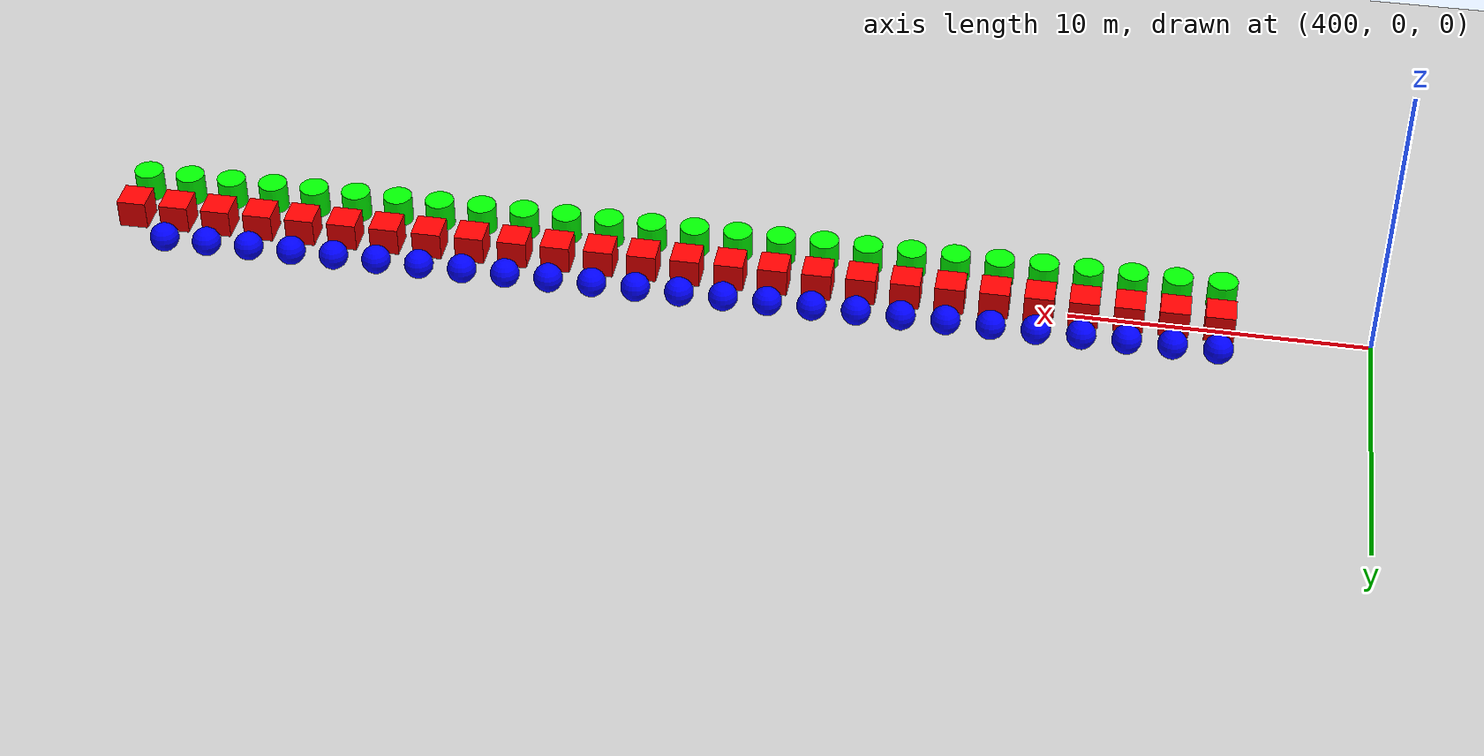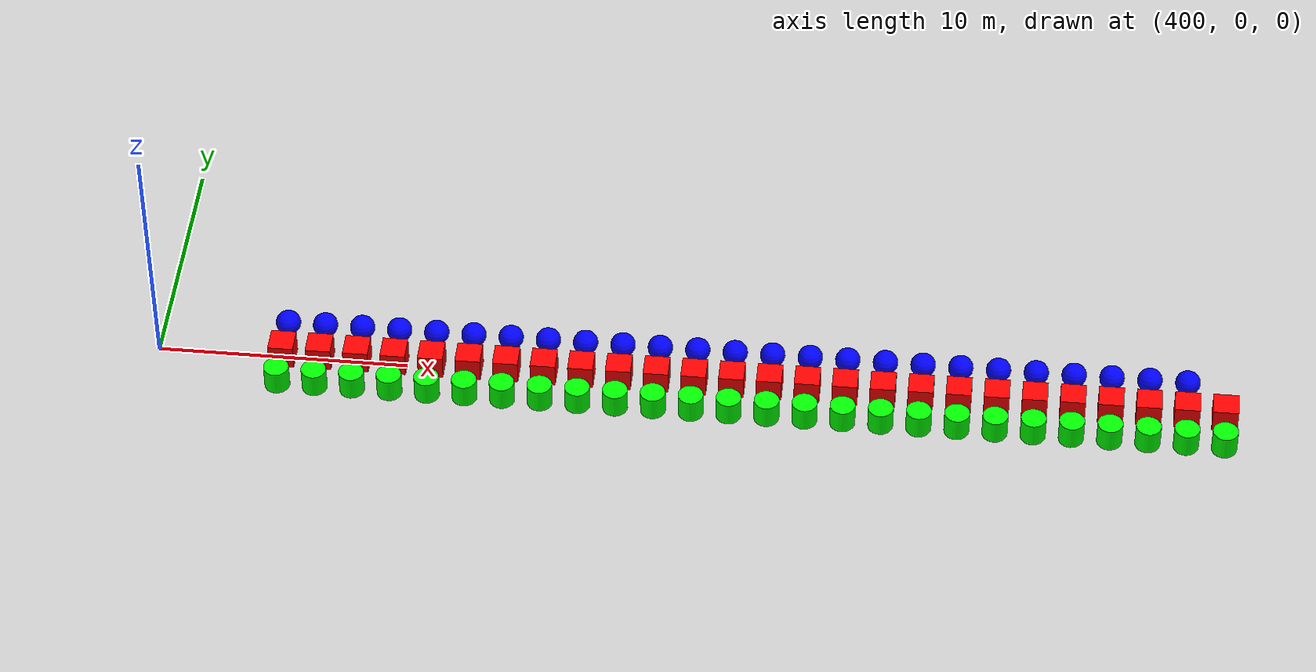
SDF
<sdf version="1.6">
 <world name="shapes">
  <model name="ground_plane">
   <static>true</static>
   <link name="link">
    <collision name="collision">
     <geometry><plane><normal>0 0 1</normal><size>100 100</size></plane></geometry>
    </collision>
    <visual name="visual">
     <geometry><plane><normal>0 0 1</normal><size>100 100</size></plane></geometry>
     <material>
      <ambient>0.8 0.8 0.8 1</ambient>
      <diffuse>0.8 0.8 0.8 1</diffuse>
      <specular>0.8 0.8 0.8 1</specular>
     </material>
    </visual>
   </link>
  </model>
  <model name="box_770">
   <static>false</static>
   <pose>405.0 0 0.5 0 0 0</pose>
   <link name="box_link">
    <inertial>
     <inertia><ixx>1</ixx><ixy>0</ixy><ixz>0</ixz><iyy>1</iyy><iyz>0</iyz><izz>1</izz></inertia>
     <mass>1.0</mass>
    </inertial>
    <collision name="box_collision"><geometry><box><size>1 1 1</size></box></geometry></collision>
    <visual name="box_visual">
     <geometry><box><size>1 1 1</size></box></geometry>
     <material><ambient>1 0 0 1</ambient><diffuse>1 0 0 1</diffuse><specular>1 0 0 1</specular></material>
    </visual>
   </link>
  </model>
  <model name="cylinder_770">
   <static>false</static>
   <pose>405.0 -1.5 0.5 0 0 0</pose>
   <link name="cylinder_link">
    <inertial>
     <inertia><ixx>2</ixx><ixy>0</ixy><ixz>0</ixz><iyy>2</iyy><iyz>0</iyz><izz>2</izz></inertia>
     <mass>2.0</mass>
    </inertial>
    <collision name="cylinder_collision">
     <geometry><cylinder><radius>0.5</radius><length>1.0</length></cylinder></geometry>
    </collision>
    <visual name="cylinder_visual">
     <geometry><cylinder><radius>0.5</radius><length>1.0</length></cylinder></geometry>
     <material><ambient>0 1 0 1</ambient><diffuse>0 1 0 1</diffuse><specular>0 1 0 1</specular></material>
    </visual>
   </link>
  </model>
  <model name="sphere_770">
   <static>false</static>
   <pose>405.0 1.5 0.5 0 0 0</pose>
   <link name="sphere_link">
    <inertial>
     <inertia><ixx>3</ixx><ixy>0</ixy><ixz>0</ixz><iyy>3</iyy><iyz>0</iyz><izz>3</izz></inertia>
     <mass>3.0</mass>
    </inertial>
    <collision name="sphere_collision"><geometry><sphere><radius>0.5</radius></sphere></geometry></collision>
    <visual name="sphere_visual">
     <geometry><sphere><radius>0.5</radius></sphere></geometry>
     <material><ambient>0 0 1 1</ambient><diffuse>0 0 1 1</diffuse><specular>0 0 1 1</specular></material>
    </visual>
   </link>
  </model>
  <model name="box_771">
   <static>false</static>
   <pose>406.5 0 0.5 0 0 0</pose>
   <link name="box_link">
    <inertial>
     <inertia><ixx>1</ixx><ixy>0</ixy><ixz>0</ixz><iyy>1</iyy><iyz>0</iyz><izz>1</izz></inertia>
     <mass>1.0</mass>
    </inertial>
    <collision name="box_collision"><geometry><box><size>1 1 1</size></box></geometry></collision>
    <visual name="box_visual">
     <geometry><box><size>1 1 1</size></box></geometry>
     <material><ambient>1 0 0 1</ambient><diffuse>1 0 0 1</diffuse><specular>1 0 0 1</specular></material>
    </visual>
   </link>
  </model>
  <model name="cylinder_771">
   <static>false</static>
   <pose>406.5 -1.5 0.5 0 0 0</pose>
   <link name="cylinder_link">
    <inertial>
     <inertia><ixx>2</ixx><ixy>0</ixy><ixz>0</ixz><iyy>2</iyy><iyz>0</iyz><izz>2</izz></inertia>
     <mass>2.0</mass>
    </inertial>
    <collision name="cylinder_collision">
     <geometry><cylinder><radius>0.5</radius><length>1.0</length></cylinder></geometry>
    </collision>
    <visual name="cylinder_visual">
     <geometry><cylinder><radius>0.5</radius><length>1.0</length></cylinder></geometry>
     <material><ambient>0 1 0 1</ambient><diffuse>0 1 0 1</diffuse><specular>0 1 0 1</specular></material>
    </visual>
   </link>
  </model>
  <model name="sphere_771">
   <static>false</static>
   <pose>406.5 1.5 0.5 0 0 0</pose>
   <link name="sphere_link">
    <inertial>
     <inertia><ixx>3</ixx><ixy>0</ixy><ixz>0</ixz><iyy>3</iyy><iyz>0</iyz><izz>3</izz></inertia>
     <mass>3.0</mass>
    </inertial>
    <collision name="sphere_collision"><geometry><sphere><radius>0.5</radius></sphere></geometry></collision>
    <visual name="sphere_visual">
     <geometry><sphere><radius>0.5</radius></sphere></geometry>
     <material><ambient>0 0 1 1</ambient><diffuse>0 0 1 1</diffuse><specular>0 0 1 1</specular></material>
    </visual>
   </link>
  </model>
  <model name="box_772">
   <static>false</static>
   <pose>408.0 0 0.5 0 0 0</pose>
   <link name="box_link">
    <inertial>
     <inertia><ixx>1</ixx><ixy>0</ixy><ixz>0</ixz><iyy>1</iyy><iyz>0</iyz><izz>1</izz></inertia>
     <mass>1.0</mass>
    </inertial>
    <collision name="box_collision"><geometry><box><size>1 1 1</size></box></geometry></collision>
    <visual name="box_visual">
     <geometry><box><size>1 1 1</size></box></geometry>
     <material><ambient>1 0 0 1</ambient><diffuse>1 0 0 1</diffuse><specular>1 0 0 1</specular></material>
    </visual>
   </link>
  </model>
  <model name="cylinder_772">
   <static>false</static>
   <pose>408.0 -1.5 0.5 0 0 0</pose>
   <link name="cylinder_link">
    <inertial>
     <inertia><ixx>2</ixx><ixy>0</ixy><ixz>0</ixz><iyy>2</iyy><iyz>0</iyz><izz>2</izz></inertia>
     <mass>2.0</mass>
    </inertial>
    <collision name="cylinder_collision">
     <geometry><cylinder><radius>0.5</radius><length>1.0</length></cylinder></geometry>
    </collision>
    <visual name="cylinder_visual">
     <geometry><cylinder><radius>0.5</radius><length>1.0</length></cylinder></geometry>
     <material><ambient>0 1 0 1</ambient><diffuse>0 1 0 1</diffuse><specular>0 1 0 1</specular></material>
    </visual>
   </link>
  </model>
  <model name="sphere_772">
   <static>false</static>
   <pose>408.0 1.5 0.5 0 0 0</pose>
   <link name="sphere_link">
    <inertial>
     <inertia><ixx>3</ixx><ixy>0</ixy><ixz>0</ixz><iyy>3</iyy><iyz>0</iyz><izz>3</izz></inertia>
     <mass>3.0</mass>
    </inertial>
    <collision name="sphere_collision"><geometry><sphere><radius>0.5</radius></sphere></geometry></collision>
    <visual name="sphere_visual">
     <geometry><sphere><radius>0.5</radius></sphere></geometry>
     <material><ambient>0 0 1 1</ambient><diffuse>0 0 1 1</diffuse><specular>0 0 1 1</specular></material>
    </visual>
   </link>
  </model>
  <model name="box_773">
   <static>false</static>
   <pose>409.5 0 0.5 0 0 0</pose>
   <link name="box_link">
    <inertial>
     <inertia><ixx>1</ixx><ixy>0</ixy><ixz>0</ixz><iyy>1</iyy><iyz>0</iyz><izz>1</izz></inertia>
     <mass>1.0</mass>
    </inertial>
    <collision name="box_collision"><geometry><box><size>1 1 1</size></box></geometry></collision>
    <visual name="box_visual">
     <geometry><box><size>1 1 1</size></box></geometry>
     <material><ambient>1 0 0 1</ambient><diffuse>1 0 0 1</diffuse><specular>1 0 0 1</specular></material>
    </visual>
   </link>
  </model>
  <model name="cylinder_773">
   <static>false</static>
   <pose>409.5 -1.5 0.5 0 0 0</pose>
   <link name="cylinder_link">
    <inertial>
     <inertia><ixx>2</ixx><ixy>0</ixy><ixz>0</ixz><iyy>2</iyy><iyz>0</iyz><izz>2</izz></inertia>
     <mass>2.0</mass>
    </inertial>
    <collision name="cylinder_collision">
     <geometry><cylinder><radius>0.5</radius><length>1.0</length></cylinder></geometry>
    </collision>
    <visual name="cylinder_visual">
     <geometry><cylinder><radius>0.5</radius><length>1.0</length></cylinder></geometry>
     <material><ambient>0 1 0 1</ambient><diffuse>0 1 0 1</diffuse><specular>0 1 0 1</specular></material>
    </visual>
   </link>
  </model>
  <model name="sphere_773">
   <static>false</static>
   <pose>409.5 1.5 0.5 0 0 0</pose>
   <link name="sphere_link">
    <inertial>
     <inertia><ixx>3</ixx><ixy>0</ixy><ixz>0</ixz><iyy>3</iyy><iyz>0</iyz><izz>3</izz></inertia>
     <mass>3.0</mass>
    </inertial>
    <collision name="sphere_collision"><geometry><sphere><radius>0.5</radius></sphere></geometry></collision>
    <visual name="sphere_visual">
     <geometry><sphere><radius>0.5</radius></sphere></geometry>
     <material><ambient>0 0 1 1</ambient><diffuse>0 0 1 1</diffuse><specular>0 0 1 1</specular></material>
    </visual>
   </link>
  </model>
  <model name="box_774">
   <static>false</static>
   <pose>411.0 0 0.5 0 0 0</pose>
   <link name="box_link">
    <inertial>
     <inertia><ixx>1</ixx><ixy>0</ixy><ixz>0</ixz><iyy>1</iyy><iyz>0</iyz><izz>1</izz></inertia>
     <mass>1.0</mass>
    </inertial>
    <collision name="box_collision"><geometry><box><size>1 1 1</size></box></geometry></collision>
    <visual name="box_visual">
     <geometry><box><size>1 1 1</size></box></geometry>
     <material><ambient>1 0 0 1</ambient><diffuse>1 0 0 1</diffuse><specular>1 0 0 1</specular></material>
    </visual>
   </link>
  </model>
  <model name="cylinder_774">
   <static>false</static>
   <pose>411.0 -1.5 0.5 0 0 0</pose>
   <link name="cylinder_link">
    <inertial>
     <inertia><ixx>2</ixx><ixy>0</ixy><ixz>0</ixz><iyy>2</iyy><iyz>0</iyz><izz>2</izz></inertia>
     <mass>2.0</mass>
    </inertial>
    <collision name="cylinder_collision">
     <geometry><cylinder><radius>0.5</radius><length>1.0</length></cylinder></geometry>
    </collision>
    <visual name="cylinder_visual">
     <geometry><cylinder><radius>0.5</radius><length>1.0</length></cylinder></geometry>
     <material><ambient>0 1 0 1</ambient><diffuse>0 1 0 1</diffuse><specular>0 1 0 1</specular></material>
    </visual>
   </link>
  </model>
  <model name="sphere_774">
   <static>false</static>
   <pose>411.0 1.5 0.5 0 0 0</pose>
   <link name="sphere_link">
    <inertial>
     <inertia><ixx>3</ixx><ixy>0</ixy><ixz>0</ixz><iyy>3</iyy><iyz>0</iyz><izz>3</izz></inertia>
     <mass>3.0</mass>
    </inertial>
    <collision name="sphere_collision"><geometry><sphere><radius>0.5</radius></sphere></geometry></collision>
    <visual name="sphere_visual">
     <geometry><sphere><radius>0.5</radius></sphere></geometry>
     <material><ambient>0 0 1 1</ambient><diffuse>0 0 1 1</diffuse><specular>0 0 1 1</specular></material>
    </visual>
   </link>
  </model>
  <model name="box_775">
   <static>false</static>
   <pose>412.5 0 0.5 0 0 0</pose>
   <link name="box_link">
    <inertial>
     <inertia><ixx>1</ixx><ixy>0</ixy><ixz>0</ixz><iyy>1</iyy><iyz>0</iyz><izz>1</izz></inertia>
     <mass>1.0</mass>
    </inertial>
    <collision name="box_collision"><geometry><box><size>1 1 1</size></box></geometry></collision>
    <visual name="box_visual">
     <geometry><box><size>1 1 1</size></box></geometry>
     <material><ambient>1 0 0 1</ambient><diffuse>1 0 0 1</diffuse><specular>1 0 0 1</specular></material>
    </visual>
   </link>
  </model>
  <model name="cylinder_775">
   <static>false</static>
   <pose>412.5 -1.5 0.5 0 0 0</pose>
   <link name="cylinder_link">
    <inertial>
     <inertia><ixx>2</ixx><ixy>0</ixy><ixz>0</ixz><iyy>2</iyy><iyz>0</iyz><izz>2</izz></inertia>
     <mass>2.0</mass>
    </inertial>
    <collision name="cylinder_collision">
     <geometry><cylinder><radius>0.5</radius><length>1.0</length></cylinder></geometry>
    </collision>
    <visual name="cylinder_visual">
     <geometry><cylinder><radius>0.5</radius><length>1.0</length></cylinder></geometry>
     <material><ambient>0 1 0 1</ambient><diffuse>0 1 0 1</diffuse><specular>0 1 0 1</specular></material>
    </visual>
   </link>
  </model>
  <model name="sphere_775">
   <static>false</static>
   <pose>412.5 1.5 0.5 0 0 0</pose>
   <link name="sphere_link">
    <inertial>
     <inertia><ixx>3</ixx><ixy>0</ixy><ixz>0</ixz><iyy>3</iyy><iyz>0</iyz><izz>3</izz></inertia>
     <mass>3.0</mass>
    </inertial>
    <collision name="sphere_collision"><geometry><sphere><radius>0.5</radius></sphere></geometry></collision>
    <visual name="sphere_visual">
     <geometry><sphere><radius>0.5</radius></sphere></geometry>
     <material><ambient>0 0 1 1</ambient><diffuse>0 0 1 1</diffuse><specular>0 0 1 1</specular></material>
    </visual>
   </link>
  </model>
  <model name="box_776">
   <static>false</static>
   <pose>414.0 0 0.5 0 0 0</pose>
   <link name="box_link">
    <inertial>
     <inertia><ixx>1</ixx><ixy>0</ixy><ixz>0</ixz><iyy>1</iyy><iyz>0</iyz><izz>1</izz></inertia>
     <mass>1.0</mass>
    </inertial>
    <collision name="box_collision"><geometry><box><size>1 1 1</size></box></geometry></collision>
    <visual name="box_visual">
     <geometry><box><size>1 1 1</size></box></geometry>
     <material><ambient>1 0 0 1</ambient><diffuse>1 0 0 1</diffuse><specular>1 0 0 1</specular></material>
    </visual>
   </link>
  </model>
  <model name="cylinder_776">
   <static>false</static>
   <pose>414.0 -1.5 0.5 0 0 0</pose>
   <link name="cylinder_link">
    <inertial>
     <inertia><ixx>2</ixx><ixy>0</ixy><ixz>0</ixz><iyy>2</iyy><iyz>0</iyz><izz>2</izz></inertia>
     <mass>2.0</mass>
    </inertial>
    <collision name="cylinder_collision">
     <geometry><cylinder><radius>0.5</radius><length>1.0</length></cylinder></geometry>
    </collision>
    <visual name="cylinder_visual">
     <geometry><cylinder><radius>0.5</radius><length>1.0</length></cylinder></geometry>
     <material><ambient>0 1 0 1</ambient><diffuse>0 1 0 1</diffuse><specular>0 1 0 1</specular></material>
    </visual>
   </link>
  </model>
  <model name="sphere_776">
   <static>false</static>
   <pose>414.0 1.5 0.5 0 0 0</pose>
   <link name="sphere_link">
    <inertial>
     <inertia><ixx>3</ixx><ixy>0</ixy><ixz>0</ixz><iyy>3</iyy><iyz>0</iyz><izz>3</izz></inertia>
     <mass>3.0</mass>
    </inertial>
    <collision name="sphere_collision"><geometry><sphere><radius>0.5</radius></sphere></geometry></collision>
    <visual name="sphere_visual">
     <geometry><sphere><radius>0.5</radius></sphere></geometry>
     <material><ambient>0 0 1 1</ambient><diffuse>0 0 1 1</diffuse><specular>0 0 1 1</specular></material>
    </visual>
   </link>
  </model>
  <model name="box_777">
   <static>false</static>
   <pose>415.5 0 0.5 0 0 0</pose>
   <link name="box_link">
    <inertial>
     <inertia><ixx>1</ixx><ixy>0</ixy><ixz>0</ixz><iyy>1</iyy><iyz>0</iyz><izz>1</izz></inertia>
     <mass>1.0</mass>
    </inertial>
    <collision name="box_collision"><geometry><box><size>1 1 1</size></box></geometry></collision>
    <visual name="box_visual">
     <geometry><box><size>1 1 1</size></box></geometry>
     <material><ambient>1 0 0 1</ambient><diffuse>1 0 0 1</diffuse><specular>1 0 0 1</specular></material>
    </visual>
   </link>
  </model>
  <model name="cylinder_777">
   <static>false</static>
   <pose>415.5 -1.5 0.5 0 0 0</pose>
   <link name="cylinder_link">
    <inertial>
     <inertia><ixx>2</ixx><ixy>0</ixy><ixz>0</ixz><iyy>2</iyy><iyz>0</iyz><izz>2</izz></inertia>
     <mass>2.0</mass>
    </inertial>
    <collision name="cylinder_collision">
     <geometry><cylinder><radius>0.5</radius><length>1.0</length></cylinder></geometry>
    </collision>
    <visual name="cylinder_visual">
     <geometry><cylinder><radius>0.5</radius><length>1.0</length></cylinder></geometry>
     <material><ambient>0 1 0 1</ambient><diffuse>0 1 0 1</diffuse><specular>0 1 0 1</specular></material>
    </visual>
   </link>
  </model>
  <model name="sphere_777">
   <static>false</static>
   <pose>415.5 1.5 0.5 0 0 0</pose>
   <link name="sphere_link">
    <inertial>
     <inertia><ixx>3</ixx><ixy>0</ixy><ixz>0</ixz><iyy>3</iyy><iyz>0</iyz><izz>3</izz></inertia>
     <mass>3.0</mass>
    </inertial>
    <collision name="sphere_collision"><geometry><sphere><radius>0.5</radius></sphere></geometry></collision>
    <visual name="sphere_visual">
     <geometry><sphere><radius>0.5</radius></sphere></geometry>
     <material><ambient>0 0 1 1</ambient><diffuse>0 0 1 1</diffuse><specular>0 0 1 1</specular></material>
    </visual>
   </link>
  </model>
  <model name="box_778">
   <static>false</static>
   <pose>417.0 0 0.5 0 0 0</pose>
   <link name="box_link">
    <inertial>
     <inertia><ixx>1</ixx><ixy>0</ixy><ixz>0</ixz><iyy>1</iyy><iyz>0</iyz><izz>1</izz></inertia>
     <mass>1.0</mass>
    </inertial>
    <collision name="box_collision"><geometry><box><size>1 1 1</size></box></geometry></collision>
    <visual name="box_visual">
     <geometry><box><size>1 1 1</size></box></geometry>
     <material><ambient>1 0 0 1</ambient><diffuse>1 0 0 1</diffuse><specular>1 0 0 1</specular></material>
    </visual>
   </link>
  </model>
  <model name="cylinder_778">
   <static>false</static>
   <pose>417.0 -1.5 0.5 0 0 0</pose>
   <link name="cylinder_link">
    <inertial>
     <inertia><ixx>2</ixx><ixy>0</ixy><ixz>0</ixz><iyy>2</iyy><iyz>0</iyz><izz>2</izz></inertia>
     <mass>2.0</mass>
    </inertial>
    <collision name="cylinder_collision">
     <geometry><cylinder><radius>0.5</radius><length>1.0</length></cylinder></geometry>
    </collision>
    <visual name="cylinder_visual">
     <geometry><cylinder><radius>0.5</radius><length>1.0</length></cylinder></geometry>
     <material><ambient>0 1 0 1</ambient><diffuse>0 1 0 1</diffuse><specular>0 1 0 1</specular></material>
    </visual>
   </link>
  </model>
  <model name="sphere_778">
   <static>false</static>
   <pose>417.0 1.5 0.5 0 0 0</pose>
   <link name="sphere_link">
    <inertial>
     <inertia><ixx>3</ixx><ixy>0</ixy><ixz>0</ixz><iyy>3</iyy><iyz>0</iyz><izz>3</izz></inertia>
     <mass>3.0</mass>
    </inertial>
    <collision name="sphere_collision"><geometry><sphere><radius>0.5</radius></sphere></geometry></collision>
    <visual name="sphere_visual">
     <geometry><sphere><radius>0.5</radius></sphere></geometry>
     <material><ambient>0 0 1 1</ambient><diffuse>0 0 1 1</diffuse><specular>0 0 1 1</specular></material>
    </visual>
   </link>
  </model>
  <model name="box_779">
   <static>false</static>
   <pose>418.5 0 0.5 0 0 0</pose>
   <link name="box_link">
    <inertial>
     <inertia><ixx>1</ixx><ixy>0</ixy><ixz>0</ixz><iyy>1</iyy><iyz>0</iyz><izz>1</izz></inertia>
     <mass>1.0</mass>
    </inertial>
    <collision name="box_collision"><geometry><box><size>1 1 1</size></box></geometry></collision>
    <visual name="box_visual">
     <geometry><box><size>1 1 1</size></box></geometry>
     <material><ambient>1 0 0 1</ambient><diffuse>1 0 0 1</diffuse><specular>1 0 0 1</specular></material>
    </visual>
   </link>
  </model>
  <model name="cylinder_779">
   <static>false</static>
   <pose>418.5 -1.5 0.5 0 0 0</pose>
   <link name="cylinder_link">
    <inertial>
     <inertia><ixx>2</ixx><ixy>0</ixy><ixz>0</ixz><iyy>2</iyy><iyz>0</iyz><izz>2</izz></inertia>
     <mass>2.0</mass>
    </inertial>
    <collision name="cylinder_collision">
     <geometry><cylinder><radius>0.5</radius><length>1.0</length></cylinder></geometry>
    </collision>
    <visual name="cylinder_visual">
     <geometry><cylinder><radius>0.5</radius><length>1.0</length></cylinder></geometry>
     <material><ambient>0 1 0 1</ambient><diffuse>0 1 0 1</diffuse><specular>0 1 0 1</specular></material>
    </visual>
   </link>
  </model>
  <model name="sphere_779">
   <static>false</static>
   <pose>418.5 1.5 0.5 0 0 0</pose>
   <link name="sphere_link">
    <inertial>
     <inertia><ixx>3</ixx><ixy>0</ixy><ixz>0</ixz><iyy>3</iyy><iyz>0</iyz><izz>3</izz></inertia>
     <mass>3.0</mass>
    </inertial>
    <collision name="sphere_collision"><geometry><sphere><radius>0.5</radius></sphere></geometry></collision>
    <visual name="sphere_visual">
     <geometry><sphere><radius>0.5</radius></sphere></geometry>
     <material><ambient>0 0 1 1</ambient><diffuse>0 0 1 1</diffuse><specular>0 0 1 1</specular></material>
    </visual>
   </link>
  </model>
  <model name="box_780">
   <static>false</static>
   <pose>420.0 0 0.5 0 0 0</pose>
   <link name="box_link">
    <inertial>
     <inertia><ixx>1</ixx><ixy>0</ixy><ixz>0</ixz><iyy>1</iyy><iyz>0</iyz><izz>1</izz></inertia>
     <mass>1.0</mass>
    </inertial>
    <collision name="box_collision"><geometry><box><size>1 1 1</size></box></geometry></collision>
    <visual name="box_visual">
     <geometry><box><size>1 1 1</size></box></geometry>
     <material><ambient>1 0 0 1</ambient><diffuse>1 0 0 1</diffuse><specular>1 0 0 1</specular></material>
    </visual>
   </link>
  </model>
  <model name="cylinder_780">
   <static>false</static>
   <pose>420.0 -1.5 0.5 0 0 0</pose>
   <link name="cylinder_link">
    <inertial>
     <inertia><ixx>2</ixx><ixy>0</ixy><ixz>0</ixz><iyy>2</iyy><iyz>0</iyz><izz>2</izz></inertia>
     <mass>2.0</mass>
    </inertial>
    <collision name="cylinder_collision">
     <geometry><cylinder><radius>0.5</radius><length>1.0</length></cylinder></geometry>
    </collision>
    <visual name="cylinder_visual">
     <geometry><cylinder><radius>0.5</radius><length>1.0</length></cylinder></geometry>
     <material><ambient>0 1 0 1</ambient><diffuse>0 1 0 1</diffuse><specular>0 1 0 1</specular></material>
    </visual>
   </link>
  </model>
  <model name="sphere_780">
   <static>false</static>
   <pose>420.0 1.5 0.5 0 0 0</pose>
   <link name="sphere_link">
    <inertial>
     <inertia><ixx>3</ixx><ixy>0</ixy><ixz>0</ixz><iyy>3</iyy><iyz>0</iyz><izz>3</izz></inertia>
     <mass>3.0</mass>
    </inertial>
    <collision name="sphere_collision"><geometry><sphere><radius>0.5</radius></sphere></geometry></collision>
    <visual name="sphere_visual">
     <geometry><sphere><radius>0.5</radius></sphere></geometry>
     <material><ambient>0 0 1 1</ambient><diffuse>0 0 1 1</diffuse><specular>0 0 1 1</specular></material>
    </visual>
   </link>
  </model>
  <model name="box_781">
   <static>false</static>
   <pose>421.5 0 0.5 0 0 0</pose>
   <link name="box_link">
    <inertial>
     <inertia><ixx>1</ixx><ixy>0</ixy><ixz>0</ixz><iyy>1</iyy><iyz>0</iyz><izz>1</izz></inertia>
     <mass>1.0</mass>
    </inertial>
    <collision name="box_collision"><geometry><box><size>1 1 1</size></box></geometry></collision>
    <visual name="box_visual">
     <geometry><box><size>1 1 1</size></box></geometry>
     <material><ambient>1 0 0 1</ambient><diffuse>1 0 0 1</diffuse><specular>1 0 0 1</specular></material>
    </visual>
   </link>
  </model>
  <model name="cylinder_781">
   <static>false</static>
   <pose>421.5 -1.5 0.5 0 0 0</pose>
   <link name="cylinder_link">
    <inertial>
     <inertia><ixx>2</ixx><ixy>0</ixy><ixz>0</ixz><iyy>2</iyy><iyz>0</iyz><izz>2</izz></inertia>
     <mass>2.0</mass>
    </inertial>
    <collision name="cylinder_collision">
     <geometry><cylinder><radius>0.5</radius><length>1.0</length></cylinder></geometry>
    </collision>
    <visual name="cylinder_visual">
     <geometry><cylinder><radius>0.5</radius><length>1.0</length></cylinder></geometry>
     <material><ambient>0 1 0 1</ambient><diffuse>0 1 0 1</diffuse><specular>0 1 0 1</specular></material>
    </visual>
   </link>
  </model>
  <model name="sphere_781">
   <static>false</static>
   <pose>421.5 1.5 0.5 0 0 0</pose>
   <link name="sphere_link">
    <inertial>
     <inertia><ixx>3</ixx><ixy>0</ixy><ixz>0</ixz><iyy>3</iyy><iyz>0</iyz><izz>3</izz></inertia>
     <mass>3.0</mass>
    </inertial>
    <collision name="sphere_collision"><geometry><sphere><radius>0.5</radius></sphere></geometry></collision>
    <visual name="sphere_visual">
     <geometry><sphere><radius>0.5</radius></sphere></geometry>
     <material><ambient>0 0 1 1</ambient><diffuse>0 0 1 1</diffuse><specular>0 0 1 1</specular></material>
    </visual>
   </link>
  </model>
  <model name="box_782">
   <static>false</static>
   <pose>423.0 0 0.5 0 0 0</pose>
   <link name="box_link">
    <inertial>
     <inertia><ixx>1</ixx><ixy>0</ixy><ixz>0</ixz><iyy>1</iyy><iyz>0</iyz><izz>1</izz></inertia>
     <mass>1.0</mass>
    </inertial>
    <collision name="box_collision"><geometry><box><size>1 1 1</size></box></geometry></collision>
    <visual name="box_visual">
     <geometry><box><size>1 1 1</size></box></geometry>
     <material><ambient>1 0 0 1</ambient><diffuse>1 0 0 1</diffuse><specular>1 0 0 1</specular></material>
    </visual>
   </link>
  </model>
  <model name="cylinder_782">
   <static>false</static>
   <pose>423.0 -1.5 0.5 0 0 0</pose>
   <link name="cylinder_link">
    <inertial>
     <inertia><ixx>2</ixx><ixy>0</ixy><ixz>0</ixz><iyy>2</iyy><iyz>0</iyz><izz>2</izz></inertia>
     <mass>2.0</mass>
    </inertial>
    <collision name="cylinder_collision">
     <geometry><cylinder><radius>0.5</radius><length>1.0</length></cylinder></geometry>
    </collision>
    <visual name="cylinder_visual">
     <geometry><cylinder><radius>0.5</radius><length>1.0</length></cylinder></geometry>
     <material><ambient>0 1 0 1</ambient><diffuse>0 1 0 1</diffuse><specular>0 1 0 1</specular></material>
    </visual>
   </link>
  </model>
  <model name="sphere_782">
   <static>false</static>
   <pose>423.0 1.5 0.5 0 0 0</pose>
   <link name="sphere_link">
    <inertial>
     <inertia><ixx>3</ixx><ixy>0</ixy><ixz>0</ixz><iyy>3</iyy><iyz>0</iyz><izz>3</izz></inertia>
     <mass>3.0</mass>
    </inertial>
    <collision name="sphere_collision"><geometry><sphere><radius>0.5</radius></sphere></geometry></collision>
    <visual name="sphere_visual">
     <geometry><sphere><radius>0.5</radius></sphere></geometry>
     <material><ambient>0 0 1 1</ambient><diffuse>0 0 1 1</diffuse><specular>0 0 1 1</specular></material>
    </visual>
   </link>
  </model>
  <model name="box_783">
   <static>false</static>
   <pose>424.5 0 0.5 0 0 0</pose>
   <link name="box_link">
    <inertial>
     <inertia><ixx>1</ixx><ixy>0</ixy><ixz>0</ixz><iyy>1</iyy><iyz>0</iyz><izz>1</izz></inertia>
     <mass>1.0</mass>
    </inertial>
    <collision name="box_collision"><geometry><box><size>1 1 1</size></box></geometry></collision>
    <visual name="box_visual">
     <geometry><box><size>1 1 1</size></box></geometry>
     <material><ambient>1 0 0 1</ambient><diffuse>1 0 0 1</diffuse><specular>1 0 0 1</specular></material>
    </visual>
   </link>
  </model>
  <model name="cylinder_783">
   <static>false</static>
   <pose>424.5 -1.5 0.5 0 0 0</pose>
   <link name="cylinder_link">
    <inertial>
     <inertia><ixx>2</ixx><ixy>0</ixy><ixz>0</ixz><iyy>2</iyy><iyz>0</iyz><izz>2</izz></inertia>
     <mass>2.0</mass>
    </inertial>
    <collision name="cylinder_collision">
     <geometry><cylinder><radius>0.5</radius><length>1.0</length></cylinder></geometry>
    </collision>
    <visual name="cylinder_visual">
     <geometry><cylinder><radius>0.5</radius><length>1.0</length></cylinder></geometry>
     <material><ambient>0 1 0 1</ambient><diffuse>0 1 0 1</diffuse><specular>0 1 0 1</specular></material>
    </visual>
   </link>
  </model>
  <model name="sphere_783">
   <static>false</static>
   <pose>424.5 1.5 0.5 0 0 0</pose>
   <link name="sphere_link">
    <inertial>
     <inertia><ixx>3</ixx><ixy>0</ixy><ixz>0</ixz><iyy>3</iyy><iyz>0</iyz><izz>3</izz></inertia>
     <mass>3.0</mass>
    </inertial>
    <collision name="sphere_collision"><geometry><sphere><radius>0.5</radius></sphere></geometry></collision>
    <visual name="sphere_visual">
     <geometry><sphere><radius>0.5</radius></sphere></geometry>
     <material><ambient>0 0 1 1</ambient><diffuse>0 0 1 1</diffuse><specular>0 0 1 1</specular></material>
    </visual>
   </link>
  </model>
  <model name="box_784">
   <static>false</static>
   <pose>426.0 0 0.5 0 0 0</pose>
   <link name="box_link">
    <inertial>
     <inertia><ixx>1</ixx><ixy>0</ixy><ixz>0</ixz><iyy>1</iyy><iyz>0</iyz><izz>1</izz></inertia>
     <mass>1.0</mass>
    </inertial>
    <collision name="box_collision"><geometry><box><size>1 1 1</size></box></geometry></collision>
    <visual name="box_visual">
     <geometry><box><size>1 1 1</size></box></geometry>
     <material><ambient>1 0 0 1</ambient><diffuse>1 0 0 1</diffuse><specular>1 0 0 1</specular></material>
    </visual>
   </link>
  </model>
  <model name="cylinder_784">
   <static>false</static>
   <pose>426.0 -1.5 0.5 0 0 0</pose>
   <link name="cylinder_link">
    <inertial>
     <inertia><ixx>2</ixx><ixy>0</ixy><ixz>0</ixz><iyy>2</iyy><iyz>0</iyz><izz>2</izz></inertia>
     <mass>2.0</mass>
    </inertial>
    <collision name="cylinder_collision">
     <geometry><cylinder><radius>0.5</radius><length>1.0</length></cylinder></geometry>
    </collision>
    <visual name="cylinder_visual">
     <geometry><cylinder><radius>0.5</radius><length>1.0</length></cylinder></geometry>
     <material><ambient>0 1 0 1</ambient><diffuse>0 1 0 1</diffuse><specular>0 1 0 1</specular></material>
    </visual>
   </link>
  </model>
  <model name="sphere_784">
   <static>false</static>
   <pose>426.0 1.5 0.5 0 0 0</pose>
   <link name="sphere_link">
    <inertial>
     <inertia><ixx>3</ixx><ixy>0</ixy><ixz>0</ixz><iyy>3</iyy><iyz>0</iyz><izz>3</izz></inertia>
     <mass>3.0</mass>
    </inertial>
    <collision name="sphere_collision"><geometry><sphere><radius>0.5</radius></sphere></geometry></collision>
    <visual name="sphere_visual">
     <geometry><sphere><radius>0.5</radius></sphere></geometry>
     <material><ambient>0 0 1 1</ambient><diffuse>0 0 1 1</diffuse><specular>0 0 1 1</specular></material>
    </visual>
   </link>
  </model>
  <model name="box_785">
   <static>false</static>
   <pose>427.5 0 0.5 0 0 0</pose>
   <link name="box_link">
    <inertial>
     <inertia><ixx>1</ixx><ixy>0</ixy><ixz>0</ixz><iyy>1</iyy><iyz>0</iyz><izz>1</izz></inertia>
     <mass>1.0</mass>
    </inertial>
    <collision name="box_collision"><geometry><box><size>1 1 1</size></box></geometry></collision>
    <visual name="box_visual">
     <geometry><box><size>1 1 1</size></box></geometry>
     <material><ambient>1 0 0 1</ambient><diffuse>1 0 0 1</diffuse><specular>1 0 0 1</specular></material>
    </visual>
   </link>
  </model>
  <model name="cylinder_785">
   <static>false</static>
   <pose>427.5 -1.5 0.5 0 0 0</pose>
   <link name="cylinder_link">
    <inertial>
     <inertia><ixx>2</ixx><ixy>0</ixy><ixz>0</ixz><iyy>2</iyy><iyz>0</iyz><izz>2</izz></inertia>
     <mass>2.0</mass>
    </inertial>
    <collision name="cylinder_collision">
     <geometry><cylinder><radius>0.5</radius><length>1.0</length></cylinder></geometry>
    </collision>
    <visual name="cylinder_visual">
     <geometry><cylinder><radius>0.5</radius><length>1.0</length></cylinder></geometry>
     <material><ambient>0 1 0 1</ambient><diffuse>0 1 0 1</diffuse><specular>0 1 0 1</specular></material>
    </visual>
   </link>
  </model>
  <model name="sphere_785">
   <static>false</static>
   <pose>427.5 1.5 0.5 0 0 0</pose>
   <link name="sphere_link">
    <inertial>
     <inertia><ixx>3</ixx><ixy>0</ixy><ixz>0</ixz><iyy>3</iyy><iyz>0</iyz><izz>3</izz></inertia>
     <mass>3.0</mass>
    </inertial>
    <collision name="sphere_collision"><geometry><sphere><radius>0.5</radius></sphere></geometry></collision>
    <visual name="sphere_visual">
     <geometry><sphere><radius>0.5</radius></sphere></geometry>
     <material><ambient>0 0 1 1</ambient><diffuse>0 0 1 1</diffuse><specular>0 0 1 1</specular></material>
    </visual>
   </link>
  </model>
  <model name="box_786">
   <static>false</static>
   <pose>429.0 0 0.5 0 0 0</pose>
   <link name="box_link">
    <inertial>
     <inertia><ixx>1</ixx><ixy>0</ixy><ixz>0</ixz><iyy>1</iyy><iyz>0</iyz><izz>1</izz></inertia>
     <mass>1.0</mass>
    </inertial>
    <collision name="box_collision"><geometry><box><size>1 1 1</size></box></geometry></collision>
    <visual name="box_visual">
     <geometry><box><size>1 1 1</size></box></geometry>
     <material><ambient>1 0 0 1</ambient><diffuse>1 0 0 1</diffuse><specular>1 0 0 1</specular></material>
    </visual>
   </link>
  </model>
  <model name="cylinder_786">
   <static>false</static>
   <pose>429.0 -1.5 0.5 0 0 0</pose>
   <link name="cylinder_link">
    <inertial>
     <inertia><ixx>2</ixx><ixy>0</ixy><ixz>0</ixz><iyy>2</iyy><iyz>0</iyz><izz>2</izz></inertia>
     <mass>2.0</mass>
    </inertial>
    <collision name="cylinder_collision">
     <geometry><cylinder><radius>0.5</radius><length>1.0</length></cylinder></geometry>
    </collision>
    <visual name="cylinder_visual">
     <geometry><cylinder><radius>0.5</radius><length>1.0</length></cylinder></geometry>
     <material><ambient>0 1 0 1</ambient><diffuse>0 1 0 1</diffuse><specular>0 1 0 1</specular></material>
    </visual>
   </link>
  </model>
  <model name="sphere_786">
   <static>false</static>
   <pose>429.0 1.5 0.5 0 0 0</pose>
   <link name="sphere_link">
    <inertial>
     <inertia><ixx>3</ixx><ixy>0</ixy><ixz>0</ixz><iyy>3</iyy><iyz>0</iyz><izz>3</izz></inertia>
     <mass>3.0</mass>
    </inertial>
    <collision name="sphere_collision"><geometry><sphere><radius>0.5</radius></sphere></geometry></collision>
    <visual name="sphere_visual">
     <geometry><sphere><radius>0.5</radius></sphere></geometry>
     <material><ambient>0 0 1 1</ambient><diffuse>0 0 1 1</diffuse><specular>0 0 1 1</specular></material>
    </visual>
   </link>
  </model>
  <model name="box_787">
   <static>false</static>
   <pose>430.5 0 0.5 0 0 0</pose>
   <link name="box_link">
    <inertial>
     <inertia><ixx>1</ixx><ixy>0</ixy><ixz>0</ixz><iyy>1</iyy><iyz>0</iyz><izz>1</izz></inertia>
     <mass>1.0</mass>
    </inertial>
    <collision name="box_collision"><geometry><box><size>1 1 1</size></box></geometry></collision>
    <visual name="box_visual">
     <geometry><box><size>1 1 1</size></box></geometry>
     <material><ambient>1 0 0 1</ambient><diffuse>1 0 0 1</diffuse><specular>1 0 0 1</specular></material>
    </visual>
   </link>
  </model>
  <model name="cylinder_787">
   <static>false</static>
   <pose>430.5 -1.5 0.5 0 0 0</pose>
   <link name="cylinder_link">
    <inertial>
     <inertia><ixx>2</ixx><ixy>0</ixy><ixz>0</ixz><iyy>2</iyy><iyz>0</iyz><izz>2</izz></inertia>
     <mass>2.0</mass>
    </inertial>
    <collision name="cylinder_collision">
     <geometry><cylinder><radius>0.5</radius><length>1.0</length></cylinder></geometry>
    </collision>
    <visual name="cylinder_visual">
     <geometry><cylinder><radius>0.5</radius><length>1.0</length></cylinder></geometry>
     <material><ambient>0 1 0 1</ambient><diffuse>0 1 0 1</diffuse><specular>0 1 0 1</specular></material>
    </visual>
   </link>
  </model>
  <model name="sphere_787">
   <static>false</static>
   <pose>430.5 1.5 0.5 0 0 0</pose>
   <link name="sphere_link">
    <inertial>
     <inertia><ixx>3</ixx><ixy>0</ixy><ixz>0</ixz><iyy>3</iyy><iyz>0</iyz><izz>3</izz></inertia>
     <mass>3.0</mass>
    </inertial>
    <collision name="sphere_collision"><geometry><sphere><radius>0.5</radius></sphere></geometry></collision>
    <visual name="sphere_visual">
     <geometry><sphere><radius>0.5</radius></sphere></geometry>
     <material><ambient>0 0 1 1</ambient><diffuse>0 0 1 1</diffuse><specular>0 0 1 1</specular></material>
    </visual>
   </link>
  </model>
  <model name="box_788">
   <static>false</static>
   <pose>432.0 0 0.5 0 0 0</pose>
   <link name="box_link">
    <inertial>
     <inertia><ixx>1</ixx><ixy>0</ixy><ixz>0</ixz><iyy>1</iyy><iyz>0</iyz><izz>1</izz></inertia>
     <mass>1.0</mass>
    </inertial>
    <collision name="box_collision"><geometry><box><size>1 1 1</size></box></geometry></collision>
    <visual name="box_visual">
     <geometry><box><size>1 1 1</size></box></geometry>
     <material><ambient>1 0 0 1</ambient><diffuse>1 0 0 1</diffuse><specular>1 0 0 1</specular></material>
    </visual>
   </link>
  </model>
  <model name="cylinder_788">
   <static>false</static>
   <pose>432.0 -1.5 0.5 0 0 0</pose>
   <link name="cylinder_link">
    <inertial>
     <inertia><ixx>2</ixx><ixy>0</ixy><ixz>0</ixz><iyy>2</iyy><iyz>0</iyz><izz>2</izz></inertia>
     <mass>2.0</mass>
    </inertial>
    <collision name="cylinder_collision">
     <geometry><cylinder><radius>0.5</radius><length>1.0</length></cylinder></geometry>
    </collision>
    <visual name="cylinder_visual">
     <geometry><cylinder><radius>0.5</radius><length>1.0</length></cylinder></geometry>
     <material><ambient>0 1 0 1</ambient><diffuse>0 1 0 1</diffuse><specular>0 1 0 1</specular></material>
    </visual>
   </link>
  </model>
  <model name="sphere_788">
   <static>false</static>
   <pose>432.0 1.5 0.5 0 0 0</pose>
   <link name="sphere_link">
    <inertial>
     <inertia><ixx>3</ixx><ixy>0</ixy><ixz>0</ixz><iyy>3</iyy><iyz>0</iyz><izz>3</izz></inertia>
     <mass>3.0</mass>
    </inertial>
    <collision name="sphere_collision"><geometry><sphere><radius>0.5</radius></sphere></geometry></collision>
    <visual name="sphere_visual">
     <geometry><sphere><radius>0.5</radius></sphere></geometry>
     <material><ambient>0 0 1 1</ambient><diffuse>0 0 1 1</diffuse><specular>0 0 1 1</specular></material>
    </visual>
   </link>
  </model>
  <model name="box_789">
   <static>false</static>
   <pose>433.5 0 0.5 0 0 0</pose>
   <link name="box_link">
    <inertial>
     <inertia><ixx>1</ixx><ixy>0</ixy><ixz>0</ixz><iyy>1</iyy><iyz>0</iyz><izz>1</izz></inertia>
     <mass>1.0</mass>
    </inertial>
    <collision name="box_collision"><geometry><box><size>1 1 1</size></box></geometry></collision>
    <visual name="box_visual">
     <geometry><box><size>1 1 1</size></box></geometry>
     <material><ambient>1 0 0 1</ambient><diffuse>1 0 0 1</diffuse><specular>1 0 0 1</specular></material>
    </visual>
   </link>
  </model>
  <model name="cylinder_789">
   <static>false</static>
   <pose>433.5 -1.5 0.5 0 0 0</pose>
   <link name="cylinder_link">
    <inertial>
     <inertia><ixx>2</ixx><ixy>0</ixy><ixz>0</ixz><iyy>2</iyy><iyz>0</iyz><izz>2</izz></inertia>
     <mass>2.0</mass>
    </inertial>
    <collision name="cylinder_collision">
     <geometry><cylinder><radius>0.5</radius><length>1.0</length></cylinder></geometry>
    </collision>
    <visual name="cylinder_visual">
     <geometry><cylinder><radius>0.5</radius><length>1.0</length></cylinder></geometry>
     <material><ambient>0 1 0 1</ambient><diffuse>0 1 0 1</diffuse><specular>0 1 0 1</specular></material>
    </visual>
   </link>
  </model>
  <model name="sphere_789">
   <static>false</static>
   <pose>433.5 1.5 0.5 0 0 0</pose>
   <link name="sphere_link">
    <inertial>
     <inertia><ixx>3</ixx><ixy>0</ixy><ixz>0</ixz><iyy>3</iyy><iyz>0</iyz><izz>3</izz></inertia>
     <mass>3.0</mass>
    </inertial>
    <collision name="sphere_collision"><geometry><sphere><radius>0.5</radius></sphere></geometry></collision>
    <visual name="sphere_visual">
     <geometry><sphere><radius>0.5</radius></sphere></geometry>
     <material><ambient>0 0 1 1</ambient><diffuse>0 0 1 1</diffuse><specular>0 0 1 1</specular></material>
    </visual>
   </link>
  </model>
  <model name="box_790">
   <static>false</static>
   <pose>435.0 0 0.5 0 0 0</pose>
   <link name="box_link">
    <inertial>
     <inertia><ixx>1</ixx><ixy>0</ixy><ixz>0</ixz><iyy>1</iyy><iyz>0</iyz><izz>1</izz></inertia>
     <mass>1.0</mass>
    </inertial>
    <collision name="box_collision"><geometry><box><size>1 1 1</size></box></geometry></collision>
    <visual name="box_visual">
     <geometry><box><size>1 1 1</size></box></geometry>
     <material><ambient>1 0 0 1</ambient><diffuse>1 0 0 1</diffuse><specular>1 0 0 1</specular></material>
    </visual>
   </link>
  </model>
  <model name="cylinder_790">
   <static>false</static>
   <pose>435.0 -1.5 0.5 0 0 0</pose>
   <link name="cylinder_link">
    <inertial>
     <inertia><ixx>2</ixx><ixy>0</ixy><ixz>0</ixz><iyy>2</iyy><iyz>0</iyz><izz>2</izz></inertia>
     <mass>2.0</mass>
    </inertial>
    <collision name="cylinder_collision">
     <geometry><cylinder><radius>0.5</radius><length>1.0</length></cylinder></geometry>
    </collision>
    <visual name="cylinder_visual">
     <geometry><cylinder><radius>0.5</radius><length>1.0</length></cylinder></geometry>
     <material><ambient>0 1 0 1</ambient><diffuse>0 1 0 1</diffuse><specular>0 1 0 1</specular></material>
    </visual>
   </link>
  </model>
  <model name="sphere_790">
   <static>false</static>
   <pose>435.0 1.5 0.5 0 0 0</pose>
   <link name="sphere_link">
    <inertial>
     <inertia><ixx>3</ixx><ixy>0</ixy><ixz>0</ixz><iyy>3</iyy><iyz>0</iyz><izz>3</izz></inertia>
     <mass>3.0</mass>
    </inertial>
    <collision name="sphere_collision"><geometry><sphere><radius>0.5</radius></sphere></geometry></collision>
    <visual name="sphere_visual">
     <geometry><sphere><radius>0.5</radius></sphere></geometry>
     <material><ambient>0 0 1 1</ambient><diffuse>0 0 1 1</diffuse><specular>0 0 1 1</specular></material>
    </visual>
   </link>
  </model>
  <model name="box_791">
   <static>false</static>
   <pose>436.5 0 0.5 0 0 0</pose>
   <link name="box_link">
    <inertial>
     <inertia><ixx>1</ixx><ixy>0</ixy><ixz>0</ixz><iyy>1</iyy><iyz>0</iyz><izz>1</izz></inertia>
     <mass>1.0</mass>
    </inertial>
    <collision name="box_collision"><geometry><box><size>1 1 1</size></box></geometry></collision>
    <visual name="box_visual">
     <geometry><box><size>1 1 1</size></box></geometry>
     <material><ambient>1 0 0 1</ambient><diffuse>1 0 0 1</diffuse><specular>1 0 0 1</specular></material>
    </visual>
   </link>
  </model>
  <model name="cylinder_791">
   <static>false</static>
   <pose>436.5 -1.5 0.5 0 0 0</pose>
   <link name="cylinder_link">
    <inertial>
     <inertia><ixx>2</ixx><ixy>0</ixy><ixz>0</ixz><iyy>2</iyy><iyz>0</iyz><izz>2</izz></inertia>
     <mass>2.0</mass>
    </inertial>
    <collision name="cylinder_collision">
     <geometry><cylinder><radius>0.5</radius><length>1.0</length></cylinder></geometry>
    </collision>
    <visual name="cylinder_visual">
     <geometry><cylinder><radius>0.5</radius><length>1.0</length></cylinder></geometry>
     <material><ambient>0 1 0 1</ambient><diffuse>0 1 0 1</diffuse><specular>0 1 0 1</specular></material>
    </visual>
   </link>
  </model>
  <model name="sphere_791">
   <static>false</static>
   <pose>436.5 1.5 0.5 0 0 0</pose>
   <link name="sphere_link">
    <inertial>
     <inertia><ixx>3</ixx><ixy>0</ixy><ixz>0</ixz><iyy>3</iyy><iyz>0</iyz><izz>3</izz></inertia>
     <mass>3.0</mass>
    </inertial>
    <collision name="sphere_collision"><geometry><sphere><radius>0.5</radius></sphere></geometry></collision>
    <visual name="sphere_visual">
     <geometry><sphere><radius>0.5</radius></sphere></geometry>
     <material><ambient>0 0 1 1</ambient><diffuse>0 0 1 1</diffuse><specular>0 0 1 1</specular></material>
    </visual>
   </link>
  </model>
  <model name="box_792">
   <static>false</static>
   <pose>438.0 0 0.5 0 0 0</pose>
   <link name="box_link">
    <inertial>
     <inertia><ixx>1</ixx><ixy>0</ixy><ixz>0</ixz><iyy>1</iyy><iyz>0</iyz><izz>1</izz></inertia>
     <mass>1.0</mass>
    </inertial>
    <collision name="box_collision"><geometry><box><size>1 1 1</size></box></geometry></collision>
    <visual name="box_visual">
     <geometry><box><size>1 1 1</size></box></geometry>
     <material><ambient>1 0 0 1</ambient><diffuse>1 0 0 1</diffuse><specular>1 0 0 1</specular></material>
    </visual>
   </link>
  </model>
  <model name="cylinder_792">
   <static>false</static>
   <pose>438.0 -1.5 0.5 0 0 0</pose>
   <link name="cylinder_link">
    <inertial>
     <inertia><ixx>2</ixx><ixy>0</ixy><ixz>0</ixz><iyy>2</iyy><iyz>0</iyz><izz>2</izz></inertia>
     <mass>2.0</mass>
    </inertial>
    <collision name="cylinder_collision">
     <geometry><cylinder><radius>0.5</radius><length>1.0</length></cylinder></geometry>
    </collision>
    <visual name="cylinder_visual">
     <geometry><cylinder><radius>0.5</radius><length>1.0</length></cylinder></geometry>
     <material><ambient>0 1 0 1</ambient><diffuse>0 1 0 1</diffuse><specular>0 1 0 1</specular></material>
    </visual>
   </link>
  </model>
  <model name="sphere_792">
   <static>false</static>
   <pose>438.0 1.5 0.5 0 0 0</pose>
   <link name="sphere_link">
    <inertial>
     <inertia><ixx>3</ixx><ixy>0</ixy><ixz>0</ixz><iyy>3</iyy><iyz>0</iyz><izz>3</izz></inertia>
     <mass>3.0</mass>
    </inertial>
    <collision name="sphere_collision"><geometry><sphere><radius>0.5</radius></sphere></geometry></collision>
    <visual name="sphere_visual">
     <geometry><sphere><radius>0.5</radius></sphere></geometry>
     <material><ambient>0 0 1 1</ambient><diffuse>0 0 1 1</diffuse><specular>0 0 1 1</specular></material>
    </visual>
   </link>
  </model>
  <model name="box_793">
   <static>false</static>
   <pose>439.5 0 0.5 0 0 0</pose>
   <link name="box_link">
    <inertial>
     <inertia><ixx>1</ixx><ixy>0</ixy><ixz>0</ixz><iyy>1</iyy><iyz>0</iyz><izz>1</izz></inertia>
     <mass>1.0</mass>
    </inertial>
    <collision name="box_collision"><geometry><box><size>1 1 1</size></box></geometry></collision>
    <visual name="box_visual">
     <geometry><box><size>1 1 1</size></box></geometry>
     <material><ambient>1 0 0 1</ambient><diffuse>1 0 0 1</diffuse><specular>1 0 0 1</specular></material>
    </visual>
   </link>
  </model>
  <model name="cylinder_793">
   <static>false</static>
   <pose>439.5 -1.5 0.5 0 0 0</pose>
   <link name="cylinder_link">
    <inertial>
     <inertia><ixx>2</ixx><ixy>0</ixy><ixz>0</ixz><iyy>2</iyy><iyz>0</iyz><izz>2</izz></inertia>
     <mass>2.0</mass>
    </inertial>
    <collision name="cylinder_collision">
     <geometry><cylinder><radius>0.5</radius><length>1.0</length></cylinder></geometry>
    </collision>
    <visual name="cylinder_visual">
     <geometry><cylinder><radius>0.5</radius><length>1.0</length></cylinder></geometry>
     <material><ambient>0 1 0 1</ambient><diffuse>0 1 0 1</diffuse><specular>0 1 0 1</specular></material>
    </visual>
   </link>
  </model>
  <model name="sphere_793">
   <static>false</static>
   <pose>439.5 1.5 0.5 0 0 0</pose>
   <link name="sphere_link">
    <inertial>
     <inertia><ixx>3</ixx><ixy>0</ixy><ixz>0</ixz><iyy>3</iyy><iyz>0</iyz><izz>3</izz></inertia>
     <mass>3.0</mass>
    </inertial>
    <collision name="sphere_collision"><geometry><sphere><radius>0.5</radius></sphere></geometry></collision>
    <visual name="sphere_visual">
     <geometry><sphere><radius>0.5</radius></sphere></geometry>
     <material><ambient>0 0 1 1</ambient><diffuse>0 0 1 1</diffuse><specular>0 0 1 1</specular></material>
    </visual>
   </link>
  </model>
  <model name="box_794">
   <static>false</static>
   <pose>441.0 0 0.5 0 0 0</pose>
   <link name="box_link">
    <inertial>
     <inertia><ixx>1</ixx><ixy>0</ixy><ixz>0</ixz><iyy>1</iyy><iyz>0</iyz><izz>1</izz></inertia>
     <mass>1.0</mass>
    </inertial>
    <collision name="box_collision"><geometry><box><size>1 1 1</size></box></geometry></collision>
    <visual name="box_visual">
     <geometry><box><size>1 1 1</size></box></geometry>
     <material><ambient>1 0 0 1</ambient><diffuse>1 0 0 1</diffuse><specular>1 0 0 1</specular></material>
    </visual>
   </link>
  </model>
  <model name="cylinder_794">
   <static>false</static>
   <pose>441.0 -1.5 0.5 0 0 0</pose>
   <link name="cylinder_link">
    <inertial>
     <inertia><ixx>2</ixx><ixy>0</ixy><ixz>0</ixz><iyy>2</iyy><iyz>0</iyz><izz>2</izz></inertia>
     <mass>2.0</mass>
    </inertial>
    <collision name="cylinder_collision">
     <geometry><cylinder><radius>0.5</radius><length>1.0</length></cylinder></geometry>
    </collision>
    <visual name="cylinder_visual">
     <geometry><cylinder><radius>0.5</radius><length>1.0</length></cylinder></geometry>
     <material><ambient>0 1 0 1</ambient><diffuse>0 1 0 1</diffuse><specular>0 1 0 1</specular></material>
    </visual>
   </link>
  </model>
  <model name="sphere_794">
   <static>false</static>
   <pose>441.0 1.5 0.5 0 0 0</pose>
   <link name="sphere_link">
    <inertial>
     <inertia><ixx>3</ixx><ixy>0</ixy><ixz>0</ixz><iyy>3</iyy><iyz>0</iyz><izz>3</izz></inertia>
     <mass>3.0</mass>
    </inertial>
    <collision name="sphere_collision"><geometry><sphere><radius>0.5</radius></sphere></geometry></collision>
    <visual name="sphere_visual">
     <geometry><sphere><radius>0.5</radius></sphere></geometry>
     <material><ambient>0 0 1 1</ambient><diffuse>0 0 1 1</diffuse><specular>0 0 1 1</specular></material>
    </visual>
   </link>
  </model>
  <model name="box_795">
   <static>false</static>
   <pose>442.5 0 0.5 0 0 0</pose>
   <link name="box_link">
    <inertial>
     <inertia><ixx>1</ixx><ixy>0</ixy><ixz>0</ixz><iyy>1</iyy><iyz>0</iyz><izz>1</izz></inertia>
     <mass>1.0</mass>
    </inertial>
    <collision name="box_collision"><geometry><box><size>1 1 1</size></box></geometry></collision>
    <visual name="box_visual">
     <geometry><box><size>1 1 1</size></box></geometry>
     <material><ambient>1 0 0 1</ambient><diffuse>1 0 0 1</diffuse><specular>1 0 0 1</specular></material>
    </visual>
   </link>
  </model>
  <model name="cylinder_795">
   <static>false</static>
   <pose>442.5 -1.5 0.5 0 0 0</pose>
   <link name="cylinder_link">
    <inertial>
     <inertia><ixx>2</ixx><ixy>0</ixy><ixz>0</ixz><iyy>2</iyy><iyz>0</iyz><izz>2</izz></inertia>
     <mass>2.0</mass>
    </inertial>
    <collision name="cylinder_collision">
     <geometry><cylinder><radius>0.5</radius><length>1.0</length></cylinder></geometry>
    </collision>
    <visual name="cylinder_visual">
     <geometry><cylinder><radius>0.5</radius><length>1.0</length></cylinder></geometry>
     <material><ambient>0 1 0 1</ambient><diffuse>0 1 0 1</diffuse><specular>0 1 0 1</specular></material>
    </visual>
   </link>
  </model>
 </world>
</sdf>
